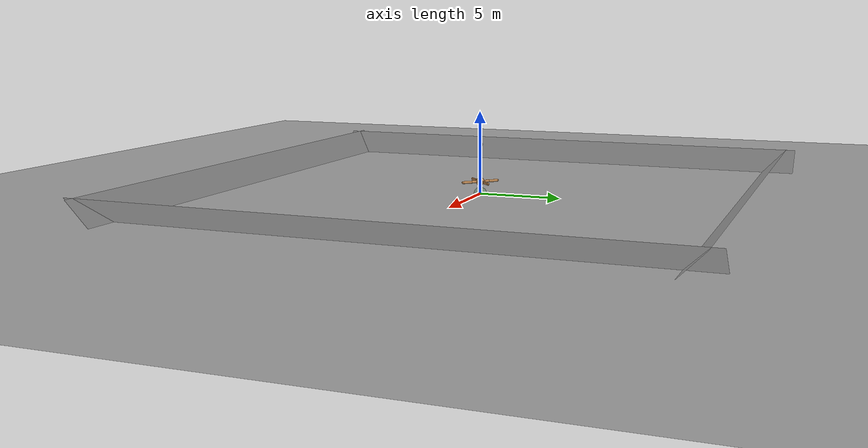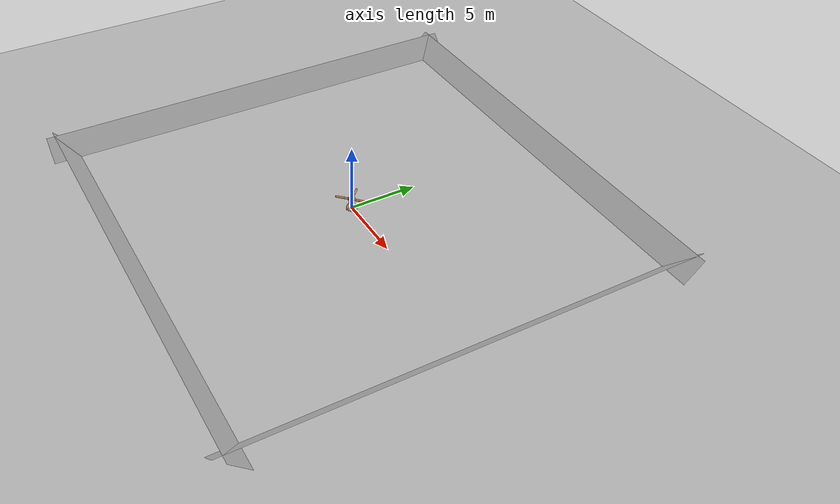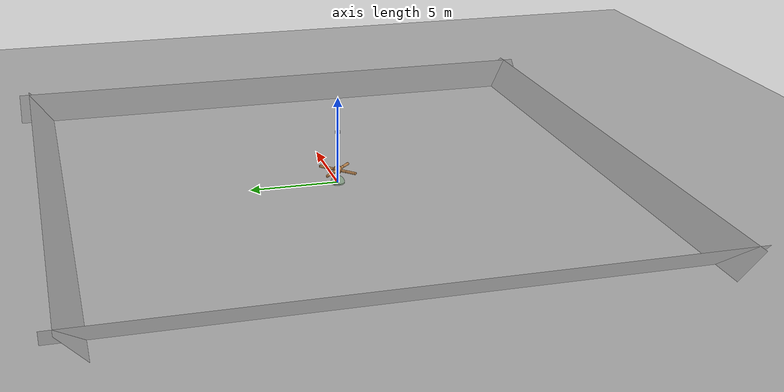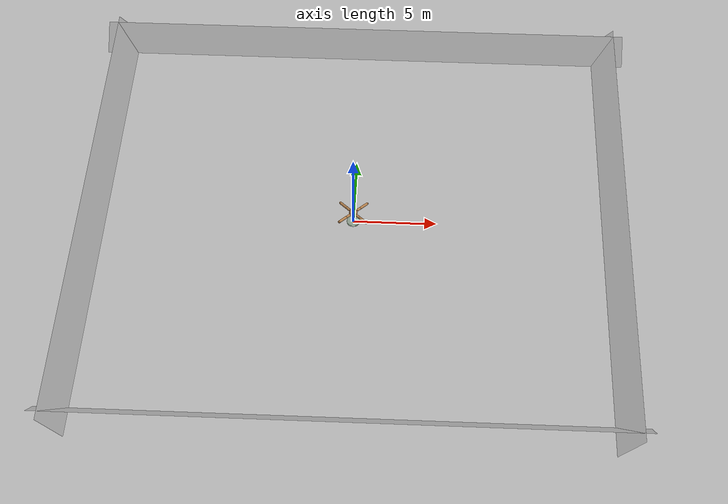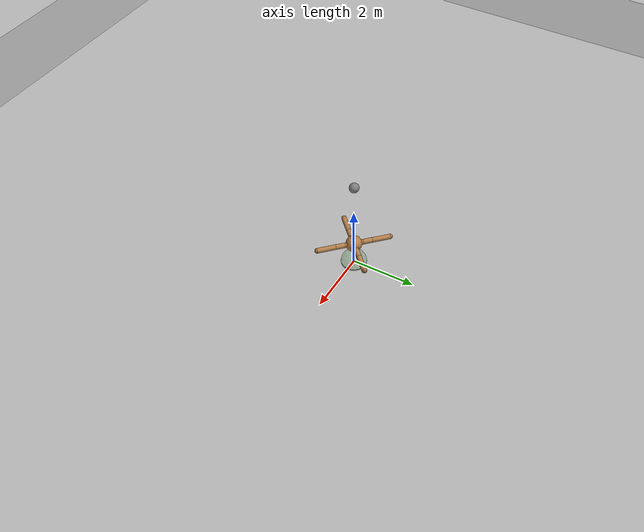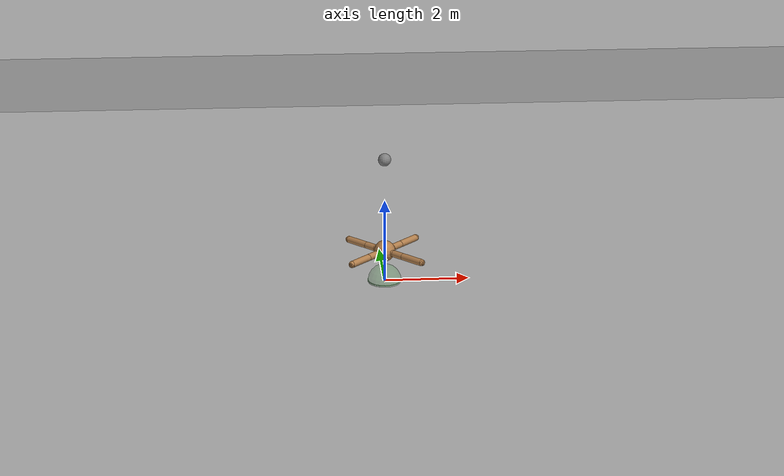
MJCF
<mujoco model="quadruped fetch">
  <option timestep="0.004" iterations="1" ls_iterations="5" solver="Newton">
    <flag eulerdamp="disable"/>
  </option>

  <statistic center="0 0 0.1" extent="10.0" meansize="0.04"/>

  <visual>
    <rgba force="1 0 0 1" haze = "0.71 0.71 0.71 0.51" fog="0.71 0.71 0.71 1"/>
    <global azimuth="140" elevation="-20" offwidth="1280" offheight="720"/>
  </visual>

  <asset>
    <texture type="skybox" builtin="gradient" rgb1="0.71 0.71 0.71" rgb2="0.71 0.71 0.71" width="800" height="800"/>
    <texture name="grey_squares" builtin="checker" height="800" width="800" rgb1="0.71 0.71 0.71" rgb2="0.71 0.71 0.71" type="2d" mark="edge" markrgb="1 1 1"/>
    <texture name="football" builtin="checker" mark="cross" width="151" height="151" rgb1="0.1 0.1 0.1" rgb2="0.9 0.9 0.9" markrgb="1 1 1"/>

    <material name="body" rgba=".7 .5 .3 1" specular="0.9" shininess="0.8"/>
    <material name="floor" reflectance="0.2" texrepeat="1 1" texuniform="true" texture="grey_squares"/>
    <material name="ball" texture="football" />
    <material name="wall" rgba="0.2 0.2 0.2 .1"/>
  </asset>

  <default>
    <geom contype="0" conaffinity="0" condim="3" density="5.0"/>
    <joint armature="1" damping="1" limited="true"/>
    <default class="wall">
      <geom type="plane" material="wall"/>
    </default>
    <default class="quadruped">
      <geom material="body"/>
    </default>
  </default>

  <worldbody>
    <!-- Arena walls + floor -->
    <geom name="floor" pos="0 0 0" size="100 100 0.010" type="plane" material="floor"/>
    <geom name="wall_px" class="wall" pos="-15.7 0 0.7" zaxis="1 0 1" size="1 17 0.5"/>
    <geom name="wall_py" class="wall" pos="0 -15.7 0.7" zaxis="0 1 1" size="17 1 0.5"/>
    <geom name="wall_nx" class="wall" pos="15.7 0 0.7" zaxis="-1 0 1" size="1 17 0.5"/>
    <geom name="wall_ny" class="wall" pos="0 15.7 0.7" zaxis="0 -1 1" size="17 1 0.5"/>

    <!-- Target to get the ball too -->
    <site name="target" type="cylinder" size="0.4 0.01" pos="0 0 0.02" rgba="0.3 0.6 0.3 0.61"/>
    <site name="target_threshold" type="sphere" size="0.40" pos="0 0 0.00" rgba="0.3 0.6 0.3 0.29"/>

    <camera name ="overhead_cam" pos="-15.151 27.731 10.860" xyaxes="-0.857 -0.515 -0.000 0.245 -0.408 0.880"/>

    <!-- Quadruped -->
    <body name="quadruped" childclass="quadruped" pos="0 0 0.75">
      <light name="tracking_light" pos="0 0 7" dir="0 0 -1" specular="0.8 0.8 0.8" mode="trackcom"/>
      <camera name="cam_default" mode="trackcom" pos="4.660 -4.778 1.745" xyaxes="0.708 0.707 0.000 -0.240 0.241 0.940"/>
      <site name="quadruped" size="0.01" pos="0 0 0"/>
      <geom name="quadruped_torso" pos="0 0 0" size="0.25" type="sphere"/>
      <joint name="quadruped_root" type="free" armature="0" damping="0" limited="false" margin="0.01" pos="0 0 0"/>

      <body name="quadruped_front_left_leg" pos="0 0 0">
        <geom name="quadruped_front_left_aux" fromto="0.0 0.0 0.0 0.2 0.2 0.0" size="0.08" type="capsule"/>
        <body name="quadruped_front_left_aux" pos="0.2 0.2 0">
          <joint name="quadruped_front_left_hip" axis="0 0 1" pos="0.0 0.0 0.0" range="-30 30" type="hinge"/>
          <geom name="quadruped_front_left_leg" fromto="0.0 0.0 0.0 0.2 0.2 0.0" size="0.08" type="capsule"/>
          <body name="quadruped_front_left_knee" pos="0.2 0.2 0">
            <joint name="quadruped_front_left_ankle" axis="-1 1 0" pos="0.0 0.0 0.0" range="30 70" type="hinge"/>
            <geom name="quadruped_front_left_ankle" fromto="0.0 0.0 0.0 0.4 0.4 0.0" size="0.08" type="capsule"/>
            <geom name="quadruped_front_left_foot" pos="0.4 0.4 0" size="0.08" type="sphere" mass="0"/>
          </body>
        </body>
      </body>

      <body name="quadruped_front_right_leg" pos="0 0 0">
        <geom name="quadruped_front_right_aux" fromto="0.0 0.0 0.0 -0.2 0.2 0.0" size="0.08" type="capsule"/>
        <body name="quadruped_front_right_aux" pos="-0.2 0.2 0">
          <joint name="quadruped_front_right_hip" axis="0 0 1" pos="0.0 0.0 0.0" range="-30 30" type="hinge"/>
          <geom name="quadruped_front_right_leg" fromto="0.0 0.0 0.0 -0.2 0.2 0.0" size="0.08" type="capsule"/>
          <body name="quadruped_front_right_knee" pos="-0.2 0.2 0">
            <joint name="quadruped_front_right_ankle" axis="1 1 0" pos="0.0 0.0 0.0" range="-70 -30" type="hinge"/>
            <geom name="quadruped_front_right_ankle" fromto="0.0 0.0 0.0 -0.4 0.4 0.0" size="0.08" type="capsule"/>
            <geom name="quadruped_front_right_foot" pos="-0.4 0.4 0" size="0.08" type="sphere" mass="0"/>
          </body>
        </body>
      </body>

      <body name="quadruped_back_left_leg" pos="0 0 0">
        <geom name="quadruped_back_left_aux" fromto="0.0 0.0 0.0 -0.2 -0.2 0.0" size="0.08" type="capsule"/>
        <body name="quadruped_back_left_aux" pos="-0.2 -0.2 0">
          <joint name="quadruped_back_left_hip" axis="0 0 1" pos="0.0 0.0 0.0" range="-30 30" type="hinge"/>
          <geom name="quadruped_back_left_leg" fromto="0.0 0.0 0.0 -0.2 -0.2 0.0" size="0.08" type="capsule"/>
          <body name="quadruped_back_left_knee" pos="-0.2 -0.2 0">
            <joint name="quadruped_back_left_ankle" axis="-1 1 0" pos="0.0 0.0 0.0" range="-70 -30" type="hinge"/>
            <geom name="quadruped_back_left_ankle" fromto="0.0 0.0 0.0 -0.4 -0.4 0.0" size="0.08" type="capsule"/>
            <geom name="quadruped_back_left_foot" pos="-0.4 -0.4 0" size="0.08" type="sphere" mass="0"/>
          </body>
        </body>
      </body>

      <body name="quadruped_back_right_leg" pos="0 0 0">
        <geom name="quadruped_back_right_aux" fromto="0.0 0.0 0.0 0.2 -0.2 0.0" size="0.08" type="capsule"/>
        <body name="quadruped_back_right_aux" pos="0.2 -0.2 0">
          <joint name="quadruped_back_right_hip" axis="0 0 1" pos="0.0 0.0 0.0" range="-30 30" type="hinge"/>
          <geom name="quadruped_back_right_leg" fromto="0.0 0.0 0.0 0.2 -0.2 0.0" size="0.08" type="capsule"/>
          <body name="quadruped_back_right_knee" pos="0.2 -0.2 0">
            <joint name="quadruped_back_right_ankle" axis="1 1 0" pos="0.0 0.0 0.0" range="30 70" type="hinge"/>
            <geom name="quadruped_back_right_ankle" fromto="0.0 0.0 0.0 0.4 -0.4 0.0" size="0.08" type="capsule"/>
            <geom name="quadruped_back_right_foot" pos="0.4 -0.4 0" size="0.08" type="sphere" mass="0"/>
          </body>
        </body>
      </body>
    </body>

    <!-- Ball -->
    <body name="ball" pos="0 0 3">
      <freejoint name="ball_root"/>
      <geom name="ball" density="5" size="0.15" material="ball" priority="1" condim="6" friction="0.7 0.005 0.005" solref="-10000 -30"/>
      <site name="ball" size="0.01" pos="0 0 0.05"/>
      <light name="ball_light" pos="0 0 4" mode="trackcom"/>
    </body>
  </worldbody>

  <!-- Quadruped has 8 Actuators -->
  <actuator>
    <motor ctrllimited="true" ctrlrange="-1.0 1.0" joint="quadruped_front_left_hip" gear="150"/>
    <motor ctrllimited="true" ctrlrange="-1.0 1.0" joint="quadruped_front_left_ankle" gear="150"/>
    <motor ctrllimited="true" ctrlrange="-1.0 1.0" joint="quadruped_front_right_hip" gear="150"/>
    <motor ctrllimited="true" ctrlrange="-1.0 1.0" joint="quadruped_front_right_ankle" gear="150"/>
    <motor ctrllimited="true" ctrlrange="-1.0 1.0" joint="quadruped_back_left_hip" gear="150"/>
    <motor ctrllimited="true" ctrlrange="-1.0 1.0" joint="quadruped_back_left_ankle" gear="150"/>
    <motor ctrllimited="true" ctrlrange="-1.0 1.0" joint="quadruped_back_right_hip" gear="150"/>
    <motor ctrllimited="true" ctrlrange="-1.0 1.0" joint="quadruped_back_right_ankle" gear="150"/>
  </actuator>

  <contact>
    <!-- Floor contacts -->
    <pair geom1="quadruped_front_left_foot" geom2="floor" friction="1 1 0.5 0.5 0.5"/>
    <pair geom1="quadruped_front_right_foot" geom2="floor" friction="1 1 0.5 0.5 0.5"/>
    <pair geom1="quadruped_back_left_foot" geom2="floor" friction="1 1 0.5 0.5 0.5"/>
    <pair geom1="quadruped_back_right_foot" geom2="floor" friction="1 1 0.5 0.5 0.5"/>
    <pair geom1="ball" geom2="floor" condim="6" friction="0.7 0.7 0.005 0.005 0.005" solref="-10000 -30"/>

    <!-- Ball contacts -->
    <pair geom1="quadruped_front_left_foot" geom2="ball" condim="6" friction="0.7 0.7 0.005 0.005 0.005" solref="-10000 -30"/>
    <pair geom1="quadruped_front_right_foot" geom2="ball" condim="6" friction="0.7 0.7 0.005 0.005 0.005" solref="-10000 -30"/>
    <pair geom1="quadruped_back_left_foot" geom2="ball" condim="6" friction="0.7 0.7 0.005 0.005 0.005" solref="-10000 -30"/>
    <pair geom1="quadruped_back_right_foot" geom2="ball" condim="6" friction="0.7 0.7 0.005 0.005 0.005" solref="-10000 -30"/>
    <pair geom1="quadruped_torso" geom2="ball" condim="6" friction="0.7 0.7 0.005 0.005 0.005" solref="-10000 -30"/>

    <!-- Wall contacts -->
    <pair geom1="ball" geom2="wall_nx" condim="6" friction="0.7 0.7 0.005 0.005 0.005" solref="-10000 -30"/>
    <pair geom1="ball" geom2="wall_ny" condim="6" friction="0.7 0.7 0.005 0.005 0.005" solref="-10000 -30"/>
    <pair geom1="ball" geom2="wall_px" condim="6" friction="0.7 0.7 0.005 0.005 0.005" solref="-10000 -30"/>
    <pair geom1="ball" geom2="wall_py" condim="6" friction="0.7 0.7 0.005 0.005 0.005" solref="-10000 -30"/>
  </contact>

  <keyframe>
  <key name="init" qpos="0.0 0.0 0.55 1.0 0.0 0.0 0.0
                          0.0 1.0
                          0.0 -1.0
                          0.0 -1.0
                          0.0 1.0
                          2.0 0.0 0.5 1.0 0.0 0.0 0.0"/>
  </keyframe>
</mujoco>
